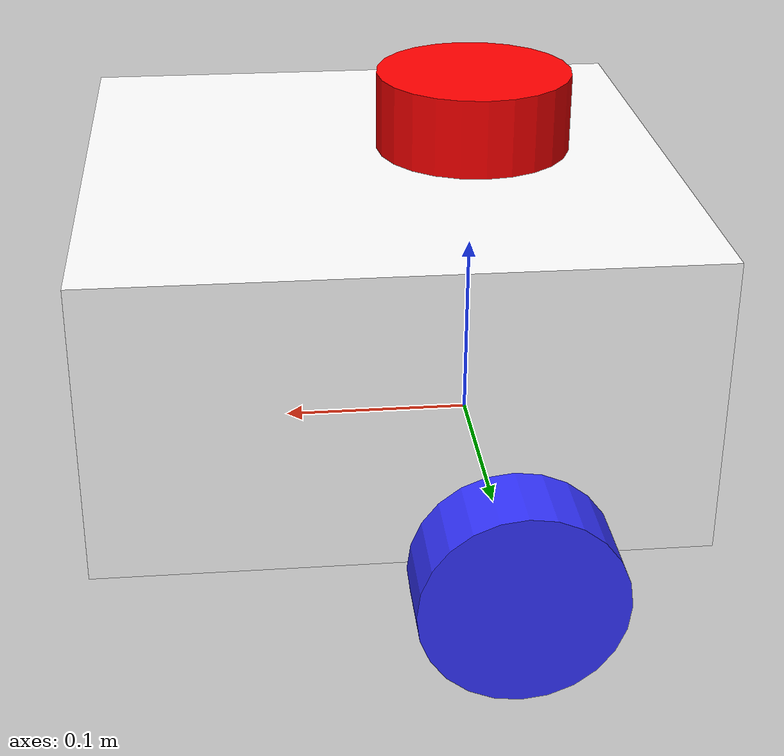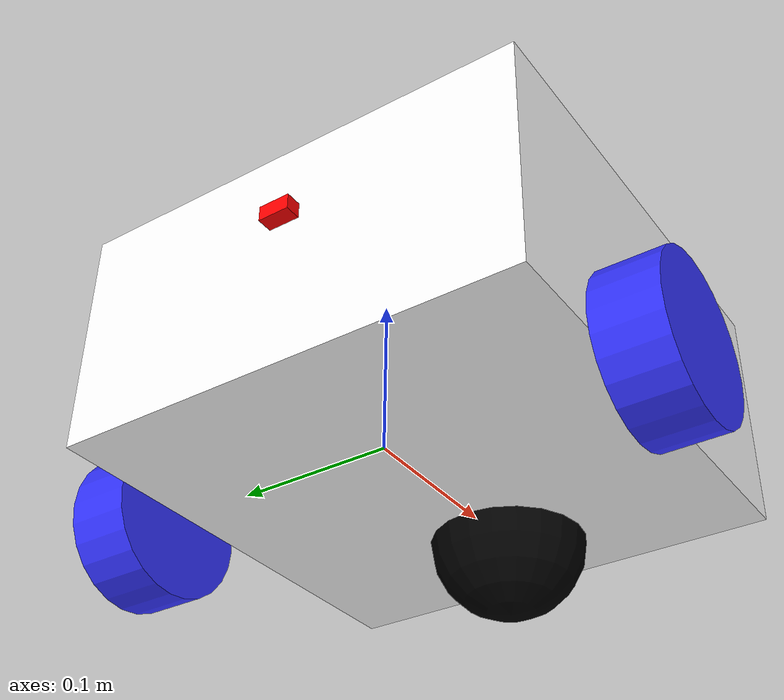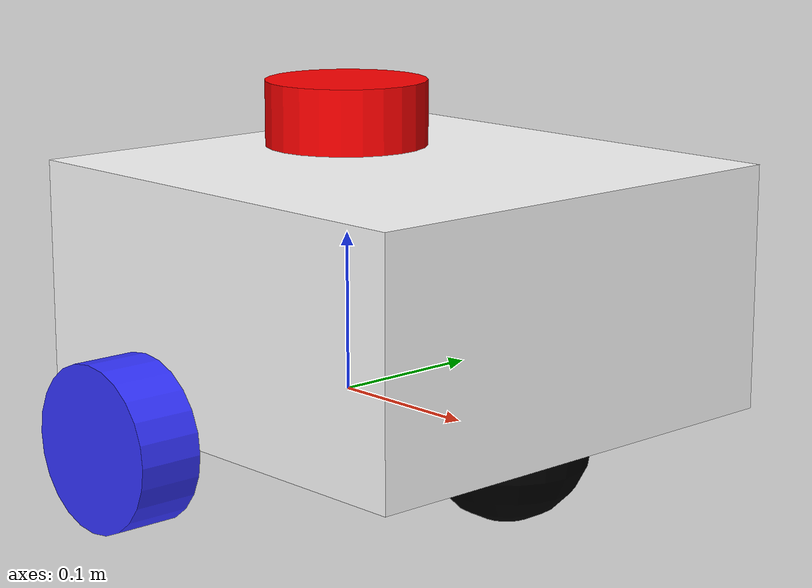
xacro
<?xml version="1.0"?>
<robot xmlns:xacro="http://www.ros.org/wiki/xacro"  name="robot">

    <xacro:include filename="robot_core.xacro" />

    <xacro:include filename="lidar.xacro" />

    <xacro:include filename="imu.xacro" />

</robot>

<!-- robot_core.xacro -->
<robot xmlns:xacro="http://www.ros.org/wiki/xacro" >

    <xacro:include filename="inertial_macros.xacro"/>

    <material name="white">
        <color rgba="1 1 1 1" />
    </material>

    <material name="orange">
        <color rgba="1 0.3 0.1 1"/>
    </material>

    <material name="blue">
        <color rgba="0.2 0.2 1 1"/>
    </material>

    <material name="black">
        <color rgba="0 0 0 1"/>
    </material>

    <material name="red">
        <color rgba="1 0 0 1"/>
    </material>

    <!-- BASE LINK -->

    <link name="base_link">

    </link>

    <!-- BASE_FOOTPRINT LINK -->

    <!-- CHASSIS LINK -->

    <joint name="chassis_joint" type="fixed">
        <parent link="base_link"/>
        <child link="chassis"/>
        <origin xyz="-0.1 0 0"/>
    </joint>

    <link name="chassis">
        <visual>
            <origin xyz="0.15 0 0.075"/>
            <geometry>
                <box size="0.3 0.3 0.15"/>
            </geometry>
            <material name="white"/>
        </visual>
        <collision>
            <origin xyz="0.15 0 0.075"/>
            <geometry>
                <box size="0.3 0.3 0.15"/>
            </geometry>
        </collision>
        <xacro:inertial_box mass="0.5" x="0.3" y="0.3" z="0.15">
            <origin xyz="0.15 0 0.075" rpy="0 0 0"/>
        </xacro:inertial_box>
    </link>

    <gazebo reference="chassis">
        <material>Gazebo/White</material>
    </gazebo>

    <!-- LEFT WHEEL LINK -->

    <joint name="left_wheel_joint" type="continuous">
        <parent link="base_link"/>
        <child link="left_wheel"/>
        <origin xyz="0 0.175 0" rpy="-${pi/2} 0 0" />
        <axis xyz="0 0 1"/>
    </joint>

    <link name="left_wheel">
        <visual>
            <geometry>
                <cylinder radius="0.05" length="0.04"/>
            </geometry>
            <material name="blue"/>
        </visual>
        <collision>
            <geometry>
                <sphere radius="0.05" />
            </geometry>
        </collision>
        <xacro:inertial_cylinder mass="0.1" length="0.04" radius="0.05">
            <origin xyz="0 0 0" rpy="0 0 0"/>
        </xacro:inertial_cylinder>
    </link>

    <gazebo reference="left_wheel">
        <material>Gazebo/Blue</material>
    </gazebo>

    <!-- RIGHT WHEEL LINK -->

    <joint name="right_wheel_joint" type="continuous">
        <parent link="base_link"/>
        <child link="right_wheel"/>
        <origin xyz="0 -0.175 0" rpy="${pi/2} 0 0" />
        <axis xyz="0 0 -1"/>
    </joint>

    <link name="right_wheel">
        <visual>
            <geometry>
                <cylinder radius="0.05" length="0.04"/>
            </geometry>
            <material name="blue"/>
        </visual>
        <collision>
            <geometry>
                <sphere radius="0.05"/>
            </geometry>
        </collision>
        <xacro:inertial_cylinder mass="0.1" length="0.04" radius="0.05">
            <origin xyz="0 0 0" rpy="0 0 0"/>
        </xacro:inertial_cylinder>
    </link>

    <gazebo reference="right_wheel">
        <material>Gazebo/Blue</material>
    </gazebo>

    <!-- CASTER WHEEL LINK -->

    <joint name="caster_wheel_joint" type="fixed">
        <parent link="chassis"/>
        <child link="caster_wheel"/>
        <origin xyz="0.24 0 0"/>
    </joint>

    <link name="caster_wheel">
        <visual>
            <geometry>
                <sphere radius="0.05"/>
            </geometry>
            <material name="black"/>
        </visual>
        <collision>
            <geometry>
                <sphere radius="0.05"/>
            </geometry>
        </collision>
        <xacro:inertial_sphere mass="0.1" radius="0.05">
            <origin xyz="0 0 0" rpy="0 0 0"/>
        </xacro:inertial_sphere>
    </link>

    <gazebo reference="caster_wheel">
        <material>Gazebo/Black</material>
        <mu1 value="0.001"/>
        <mu2 value="0.001"/>
    </gazebo>

</robot>

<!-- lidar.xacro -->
<robot xmlns:xacro="http://www.ros.org/wiki/xacro" >

    <joint name="laser_joint" type="fixed">
        <parent link="chassis"/>
        <child link="laser_frame"/>
        <origin xyz="0.1 0 0.175" rpy="0 0 0"/>
    </joint>

    <link name="laser_frame">
        <visual>
            <geometry>
                <cylinder radius="0.05" length="0.04"/>
            </geometry>
            <material name="red"/>
        </visual>
        <collision>
            <geometry>
                <cylinder radius="0.05" length="0.04"/>
            </geometry>
        </collision>
        <xacro:inertial_cylinder mass="0.1" length="0.04" radius="0.05">
            <origin xyz="0 0 0" rpy="0 0 0"/>
        </xacro:inertial_cylinder>
    </link>

</robot>

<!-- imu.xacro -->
<robot xmlns:xacro="http://www.ros.org/wiki/xacro">

  <!-- Joint fijo entre el chasis y el IMU -->
  <joint name="imu_joint" type="fixed">
    <parent link="chassis"/>
    <child link="imu_link"/>
    <origin xyz="0 0 0.1" rpy="0 0 0"/>
  </joint>

  <!-- Link del IMU -->
  <link name="imu_link">
    <visual>
      <geometry>
        <box size="0.02 0.02 0.01"/>
      </geometry>
      <material name="red"/>
    </visual>
    <collision>
      <geometry>
        <box size="0.02 0.02 0.01"/>
      </geometry>
    </collision>
    <inertial>
      <mass value="0.01"/>
      <origin xyz="0 0 0" rpy="0 0 0"/>
      <inertia ixx="1e-6" iyy="1e-6" izz="1e-6"
               ixy="0.0" ixz="0.0" iyz="0.0"/>
    </inertial>
  </link>

  <!-- Bloque Gazebo para simular IMU -->

</robot>
